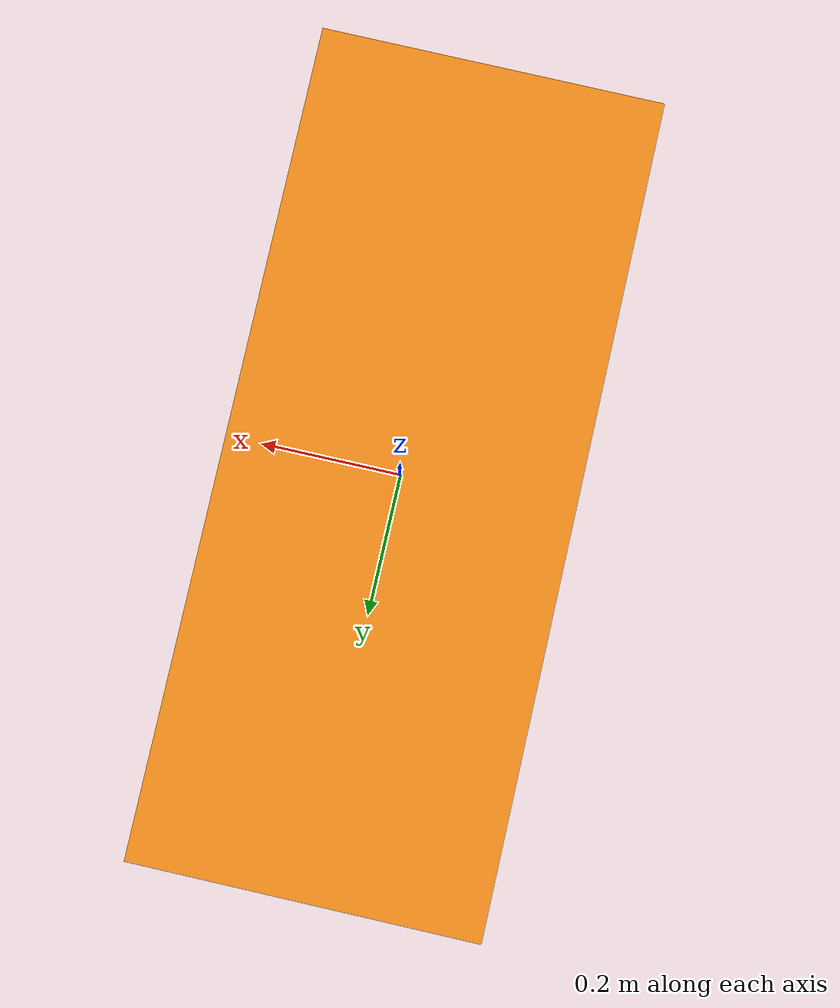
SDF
<?xml version='1.0'?>
<sdf version='1.7'>
  <model name='wood_board'>
    <link name='link_0'>
      <inertial>
        <mass>0.0132995</mass>
        <inertia>
          <ixx>0.00157649</ixx>
          <ixy>0</ixy>
          <ixz>0</ixz>
          <iyy>0.00021538</iyy>
          <iyz>0</iyz>
          <izz>0.00179043</izz>
        </inertia>
        <pose>0 0 0 0 -0 0</pose>
      </inertial>
      <pose>0 0 0 0 -0 0</pose>
      <gravity>1</gravity>
      <self_collide>0</self_collide>
      <kinematic>0</kinematic>
      <enable_wind>0</enable_wind>
      <visual name='visual'>
        <pose>0 0 0 0 -0 0</pose>
        <geometry>
          <box>
            <size>0.5 1.2 0.025549</size>
          </box>
        </geometry>
        <material>
          <lighting>1</lighting>
          <script>
            <uri>file://media/materials/scripts/gazebo.material</uri>
            <name>Gazebo/Orange</name>
          </script>
          <shader type='pixel'>
            <normal_map>__default__</normal_map>
          </shader>
          <ambient>1 0.509 0.047 1</ambient>
          <diffuse>1 0.509 0.047 1</diffuse>
          <specular>0.5 0.5 0.5 1</specular>
          <emissive>0 0 0 1</emissive>
        </material>
        <transparency>0</transparency>
        <cast_shadows>1</cast_shadows>
      </visual>
      <collision name='collision'>
        <laser_retro>0</laser_retro>
        <max_contacts>10</max_contacts>
        <pose>0 0 0 0 -0 0</pose>
        <geometry>
          <box>
            <size>0.440096 1.19239 0.025549</size>
          </box>
        </geometry>
        <surface>
          <friction>
            <ode>
              <mu>1</mu>
              <mu2>1</mu2>
              <fdir1>0 0 0</fdir1>
              <slip1>0</slip1>
              <slip2>0</slip2>
            </ode>
            <torsional>
              <coefficient>1</coefficient>
              <patch_radius>0</patch_radius>
              <surface_radius>0</surface_radius>
              <use_patch_radius>1</use_patch_radius>
              <ode>
                <slip>0</slip>
              </ode>
            </torsional>
          </friction>
          <bounce>
            <restitution_coefficient>0</restitution_coefficient>
            <threshold>1e+06</threshold>
          </bounce>
          <contact>
            <collide_without_contact>0</collide_without_contact>
            <collide_without_contact_bitmask>1</collide_without_contact_bitmask>
            <collide_bitmask>1</collide_bitmask>
            <ode>
              <soft_cfm>0</soft_cfm>
              <soft_erp>0.2</soft_erp>
              <kp>1e+13</kp>
              <kd>1</kd>
              <max_vel>0.01</max_vel>
              <min_depth>0</min_depth>
            </ode>
            <bullet>
              <split_impulse>1</split_impulse>
              <split_impulse_penetration_threshold>-0.01</split_impulse_penetration_threshold>
              <soft_cfm>0</soft_cfm>
              <soft_erp>0.2</soft_erp>
              <kp>1e+13</kp>
              <kd>1</kd>
            </bullet>
          </contact>
        </surface>
      </collision>
    </link>
    <static>0</static>
    <allow_auto_disable>1</allow_auto_disable>
    <plugin name='board_controller' filename='libgazebo_ros_planar_move.so'>
      <commandTopic>cmd_vel</commandTopic>
      <odometryTopic>odom</odometryTopic>
      <odometryFrame>odom</odometryFrame>
      <odometryRate>100.0</odometryRate>
      <robotBaseFrame>base_footprint</robotBaseFrame>
    </plugin>
  </model>
</sdf>
